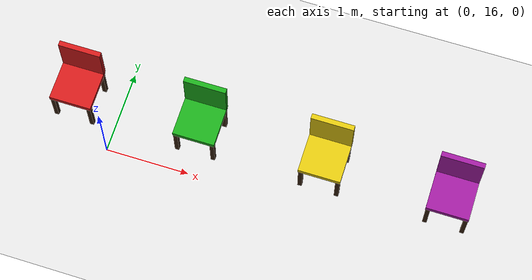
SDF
<sdf version="1.7">
 <world name="pr2_world">
  <model name="ground_plane">
   <static>1</static>
   <link name="link">
    <collision name="collision">
     <geometry><plane><normal>0 0 1</normal><size>200 200</size></plane></geometry>
     <surface><friction><ode><mu>100</mu><mu2>50</mu2></ode></friction></surface>
    </collision>
    <visual name="visual">
     <cast_shadows>0</cast_shadows>
     <geometry><plane><normal>0 0 1</normal><size>200 200</size></plane></geometry>
     <material>
      <ambient>0.85 0.85 0.85 1</ambient>
      <diffuse>0.85 0.85 0.85 1</diffuse>
      <specular>0.05 0.05 0.05 1</specular>
     </material>
    </visual>
   </link>
  </model>
  <model name="chair_2">
   <static>1</static>
   <pose>-0.5 16.5 0 0 0 0</pose>
   <link name="link">
    <visual name="s">
     <pose>0 0 0.45 0 0 0</pose>
     <geometry><box><size>0.50 0.50 0.06</size></box></geometry>
     <material><ambient>0.80 0.10 0.10 1</ambient><diffuse>0.80 0.10 0.10 1</diffuse></material>
    </visual>
    <collision name="sc">
     <pose>0 0 0.45 0 0 0</pose>
     <geometry><box><size>0.50 0.50 0.06</size></box></geometry>
    </collision>
    <visual name="bk">
     <pose>0 0.24 0.70 0 0 0</pose>
     <geometry><box><size>0.50 0.06 0.50</size></box></geometry>
     <material><ambient>0.80 0.10 0.10 1</ambient><diffuse>0.80 0.10 0.10 1</diffuse></material>
    </visual>
    <collision name="bkc">
     <pose>0 0.24 0.70 0 0 0</pose>
     <geometry><box><size>0.50 0.06 0.50</size></box></geometry>
    </collision>
    <visual name="l1">
     <pose>-0.22 -0.22 0.225 0 0 0</pose>
     <geometry><box><size>0.05 0.05 0.45</size></box></geometry>
     <material><ambient>0.20 0.12 0.05 1</ambient><diffuse>0.20 0.12 0.05 1</diffuse></material>
    </visual>
    <collision name="l1c">
     <pose>-0.22 -0.22 0.225 0 0 0</pose>
     <geometry><box><size>0.05 0.05 0.45</size></box></geometry>
    </collision>
    <visual name="l2">
     <pose>0.22 -0.22 0.225 0 0 0</pose>
     <geometry><box><size>0.05 0.05 0.45</size></box></geometry>
     <material><ambient>0.20 0.12 0.05 1</ambient><diffuse>0.20 0.12 0.05 1</diffuse></material>
    </visual>
    <collision name="l2c">
     <pose>0.22 -0.22 0.225 0 0 0</pose>
     <geometry><box><size>0.05 0.05 0.45</size></box></geometry>
    </collision>
    <visual name="l3">
     <pose>-0.22 0.22 0.225 0 0 0</pose>
     <geometry><box><size>0.05 0.05 0.45</size></box></geometry>
     <material><ambient>0.20 0.12 0.05 1</ambient><diffuse>0.20 0.12 0.05 1</diffuse></material>
    </visual>
    <collision name="l3c">
     <pose>-0.22 0.22 0.225 0 0 0</pose>
     <geometry><box><size>0.05 0.05 0.45</size></box></geometry>
    </collision>
    <visual name="l4">
     <pose>0.22 0.22 0.225 0 0 0</pose>
     <geometry><box><size>0.05 0.05 0.45</size></box></geometry>
     <material><ambient>0.20 0.12 0.05 1</ambient><diffuse>0.20 0.12 0.05 1</diffuse></material>
    </visual>
    <collision name="l4c">
     <pose>0.22 0.22 0.225 0 0 0</pose>
     <geometry><box><size>0.05 0.05 0.45</size></box></geometry>
    </collision>
   </link>
  </model>
  <model name="chair_3">
   <static>1</static>
   <pose>1.0 16.5 0 0 0 0</pose>
   <link name="link">
    <visual name="s">
     <pose>0 0 0.45 0 0 0</pose>
     <geometry><box><size>0.50 0.50 0.06</size></box></geometry>
     <material><ambient>0.10 0.65 0.10 1</ambient><diffuse>0.10 0.65 0.10 1</diffuse></material>
    </visual>
    <collision name="sc">
     <pose>0 0 0.45 0 0 0</pose>
     <geometry><box><size>0.50 0.50 0.06</size></box></geometry>
    </collision>
    <visual name="bk">
     <pose>0 0.24 0.70 0 0 0</pose>
     <geometry><box><size>0.50 0.06 0.50</size></box></geometry>
     <material><ambient>0.10 0.65 0.10 1</ambient><diffuse>0.10 0.65 0.10 1</diffuse></material>
    </visual>
    <collision name="bkc">
     <pose>0 0.24 0.70 0 0 0</pose>
     <geometry><box><size>0.50 0.06 0.50</size></box></geometry>
    </collision>
    <visual name="l1">
     <pose>-0.22 -0.22 0.225 0 0 0</pose>
     <geometry><box><size>0.05 0.05 0.45</size></box></geometry>
     <material><ambient>0.20 0.12 0.05 1</ambient><diffuse>0.20 0.12 0.05 1</diffuse></material>
    </visual>
    <collision name="l1c">
     <pose>-0.22 -0.22 0.225 0 0 0</pose>
     <geometry><box><size>0.05 0.05 0.45</size></box></geometry>
    </collision>
    <visual name="l2">
     <pose>0.22 -0.22 0.225 0 0 0</pose>
     <geometry><box><size>0.05 0.05 0.45</size></box></geometry>
     <material><ambient>0.20 0.12 0.05 1</ambient><diffuse>0.20 0.12 0.05 1</diffuse></material>
    </visual>
    <collision name="l2c">
     <pose>0.22 -0.22 0.225 0 0 0</pose>
     <geometry><box><size>0.05 0.05 0.45</size></box></geometry>
    </collision>
    <visual name="l3">
     <pose>-0.22 0.22 0.225 0 0 0</pose>
     <geometry><box><size>0.05 0.05 0.45</size></box></geometry>
     <material><ambient>0.20 0.12 0.05 1</ambient><diffuse>0.20 0.12 0.05 1</diffuse></material>
    </visual>
    <collision name="l3c">
     <pose>-0.22 0.22 0.225 0 0 0</pose>
     <geometry><box><size>0.05 0.05 0.45</size></box></geometry>
    </collision>
    <visual name="l4">
     <pose>0.22 0.22 0.225 0 0 0</pose>
     <geometry><box><size>0.05 0.05 0.45</size></box></geometry>
     <material><ambient>0.20 0.12 0.05 1</ambient><diffuse>0.20 0.12 0.05 1</diffuse></material>
    </visual>
    <collision name="l4c">
     <pose>0.22 0.22 0.225 0 0 0</pose>
     <geometry><box><size>0.05 0.05 0.45</size></box></geometry>
    </collision>
   </link>
  </model>
  <model name="chair_4">
   <static>1</static>
   <pose>2.5 16.5 0 0 0 0</pose>
   <link name="link">
    <visual name="s">
     <pose>0 0 0.45 0 0 0</pose>
     <geometry><box><size>0.50 0.50 0.06</size></box></geometry>
     <material><ambient>0.85 0.75 0.05 1</ambient><diffuse>0.85 0.75 0.05 1</diffuse></material>
    </visual>
    <collision name="sc">
     <pose>0 0 0.45 0 0 0</pose>
     <geometry><box><size>0.50 0.50 0.06</size></box></geometry>
    </collision>
    <visual name="bk">
     <pose>0 0.24 0.70 0 0 0</pose>
     <geometry><box><size>0.50 0.06 0.50</size></box></geometry>
     <material><ambient>0.85 0.75 0.05 1</ambient><diffuse>0.85 0.75 0.05 1</diffuse></material>
    </visual>
    <collision name="bkc">
     <pose>0 0.24 0.70 0 0 0</pose>
     <geometry><box><size>0.50 0.06 0.50</size></box></geometry>
    </collision>
    <visual name="l1">
     <pose>-0.22 -0.22 0.225 0 0 0</pose>
     <geometry><box><size>0.05 0.05 0.45</size></box></geometry>
     <material><ambient>0.20 0.12 0.05 1</ambient><diffuse>0.20 0.12 0.05 1</diffuse></material>
    </visual>
    <collision name="l1c">
     <pose>-0.22 -0.22 0.225 0 0 0</pose>
     <geometry><box><size>0.05 0.05 0.45</size></box></geometry>
    </collision>
    <visual name="l2">
     <pose>0.22 -0.22 0.225 0 0 0</pose>
     <geometry><box><size>0.05 0.05 0.45</size></box></geometry>
     <material><ambient>0.20 0.12 0.05 1</ambient><diffuse>0.20 0.12 0.05 1</diffuse></material>
    </visual>
    <collision name="l2c">
     <pose>0.22 -0.22 0.225 0 0 0</pose>
     <geometry><box><size>0.05 0.05 0.45</size></box></geometry>
    </collision>
    <visual name="l3">
     <pose>-0.22 0.22 0.225 0 0 0</pose>
     <geometry><box><size>0.05 0.05 0.45</size></box></geometry>
     <material><ambient>0.20 0.12 0.05 1</ambient><diffuse>0.20 0.12 0.05 1</diffuse></material>
    </visual>
    <collision name="l3c">
     <pose>-0.22 0.22 0.225 0 0 0</pose>
     <geometry><box><size>0.05 0.05 0.45</size></box></geometry>
    </collision>
    <visual name="l4">
     <pose>0.22 0.22 0.225 0 0 0</pose>
     <geometry><box><size>0.05 0.05 0.45</size></box></geometry>
     <material><ambient>0.20 0.12 0.05 1</ambient><diffuse>0.20 0.12 0.05 1</diffuse></material>
    </visual>
    <collision name="l4c">
     <pose>0.22 0.22 0.225 0 0 0</pose>
     <geometry><box><size>0.05 0.05 0.45</size></box></geometry>
    </collision>
   </link>
  </model>
  <model name="chair_5">
   <static>1</static>
   <pose>4.0 16.5 0 0 0 0</pose>
   <link name="link">
    <visual name="s">
     <pose>0 0 0.45 0 0 0</pose>
     <geometry><box><size>0.50 0.50 0.06</size></box></geometry>
     <material><ambient>0.60 0.10 0.60 1</ambient><diffuse>0.60 0.10 0.60 1</diffuse></material>
    </visual>
    <collision name="sc">
     <pose>0 0 0.45 0 0 0</pose>
     <geometry><box><size>0.50 0.50 0.06</size></box></geometry>
    </collision>
    <visual name="bk">
     <pose>0 0.24 0.70 0 0 0</pose>
     <geometry><box><size>0.50 0.06 0.50</size></box></geometry>
     <material><ambient>0.60 0.10 0.60 1</ambient><diffuse>0.60 0.10 0.60 1</diffuse></material>
    </visual>
    <collision name="bkc">
     <pose>0 0.24 0.70 0 0 0</pose>
     <geometry><box><size>0.50 0.06 0.50</size></box></geometry>
    </collision>
    <visual name="l1">
     <pose>-0.22 -0.22 0.225 0 0 0</pose>
     <geometry><box><size>0.05 0.05 0.45</size></box></geometry>
     <material><ambient>0.20 0.12 0.05 1</ambient><diffuse>0.20 0.12 0.05 1</diffuse></material>
    </visual>
    <collision name="l1c">
     <pose>-0.22 -0.22 0.225 0 0 0</pose>
     <geometry><box><size>0.05 0.05 0.45</size></box></geometry>
    </collision>
    <visual name="l2">
     <pose>0.22 -0.22 0.225 0 0 0</pose>
     <geometry><box><size>0.05 0.05 0.45</size></box></geometry>
     <material><ambient>0.20 0.12 0.05 1</ambient><diffuse>0.20 0.12 0.05 1</diffuse></material>
    </visual>
    <collision name="l2c">
     <pose>0.22 -0.22 0.225 0 0 0</pose>
     <geometry><box><size>0.05 0.05 0.45</size></box></geometry>
    </collision>
    <visual name="l3">
     <pose>-0.22 0.22 0.225 0 0 0</pose>
     <geometry><box><size>0.05 0.05 0.45</size></box></geometry>
     <material><ambient>0.20 0.12 0.05 1</ambient><diffuse>0.20 0.12 0.05 1</diffuse></material>
    </visual>
    <collision name="l3c">
     <pose>-0.22 0.22 0.225 0 0 0</pose>
     <geometry><box><size>0.05 0.05 0.45</size></box></geometry>
    </collision>
    <visual name="l4">
     <pose>0.22 0.22 0.225 0 0 0</pose>
     <geometry><box><size>0.05 0.05 0.45</size></box></geometry>
     <material><ambient>0.20 0.12 0.05 1</ambient><diffuse>0.20 0.12 0.05 1</diffuse></material>
    </visual>
    <collision name="l4c">
     <pose>0.22 0.22 0.225 0 0 0</pose>
     <geometry><box><size>0.05 0.05 0.45</size></box></geometry>
    </collision>
   </link>
  </model>
 </world>
</sdf>
